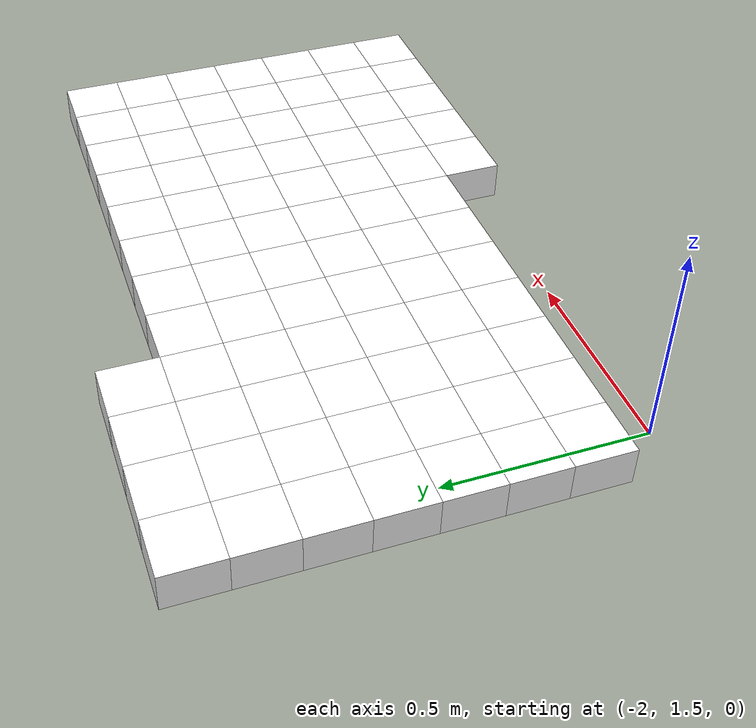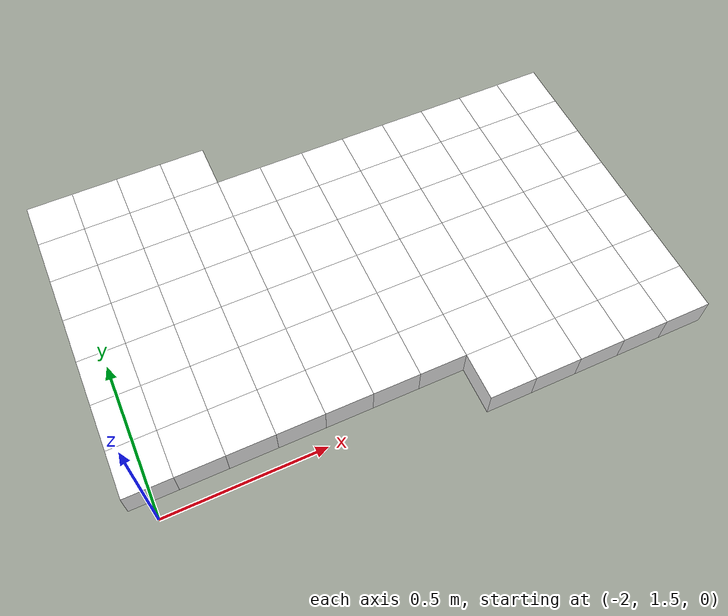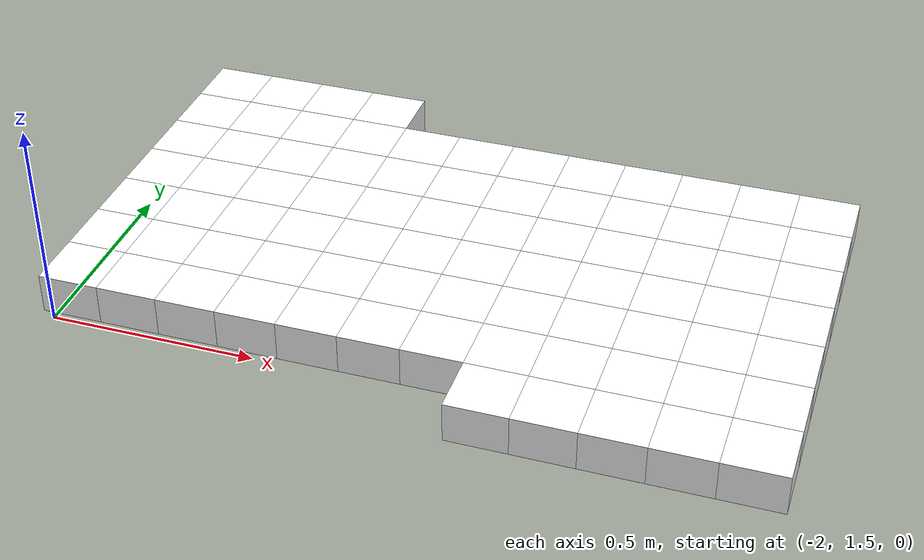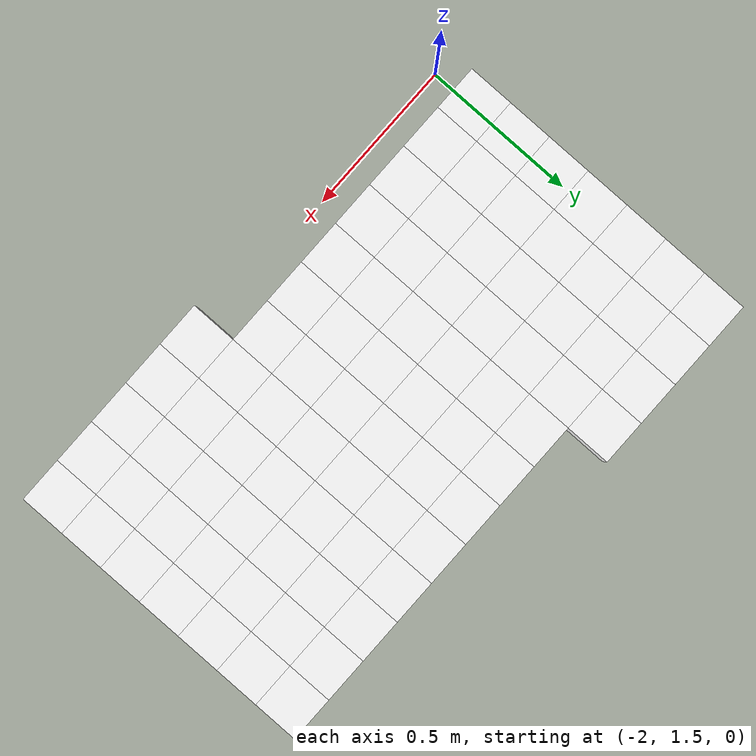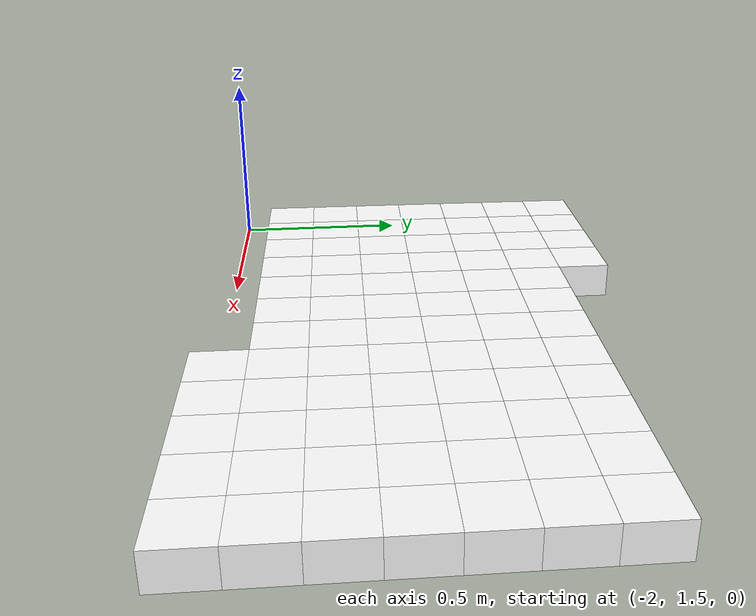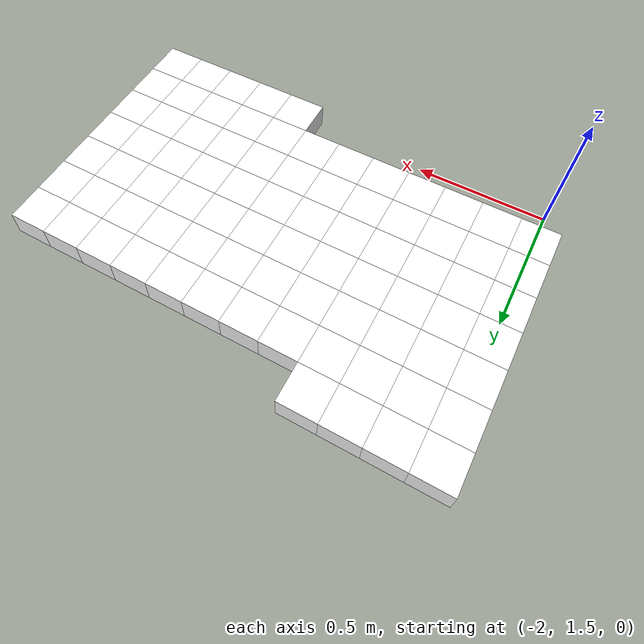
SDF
<sdf version="1.7">
 <world name="default">
  <include><uri>model://sun</uri></include>
  <model name="static_environment">
   <static>true</static>
   <link name="region_127">
    <pose>-0.95 1.5 0.0 0.0 0.0 0.0</pose>
    <collision name="region_127_collision">
     <geometry><box><size>0.15 0.15 0.1</size></box></geometry>
     <surface><friction><ode><mu>1.0</mu><mu2>1.0</mu2></ode></friction></surface>
    </collision>
    <visual name="region_127_visual">
     <geometry><box><size>0.15 0.15 0.1</size></box></geometry>
     <material><ambient>1.0 1.0 1.0 1.0</ambient><diffuse>1.0 1.0 1.0 1.0</diffuse></material>
    </visual>
   </link>
   <link name="region_128">
    <pose>-0.8 1.5 0.0 0.0 0.0 0.0</pose>
    <collision name="region_128_collision">
     <geometry><box><size>0.15 0.15 0.1</size></box></geometry>
     <surface><friction><ode><mu>1.0</mu><mu2>1.0</mu2></ode></friction></surface>
    </collision>
    <visual name="region_128_visual">
     <geometry><box><size>0.15 0.15 0.1</size></box></geometry>
     <material><ambient>1.0 1.0 1.0 1.0</ambient><diffuse>1.0 1.0 1.0 1.0</diffuse></material>
    </visual>
   </link>
   <link name="region_129">
    <pose>-0.6500000000000001 1.5 0.0 0.0 0.0 0.0</pose>
    <collision name="region_129_collision">
     <geometry><box><size>0.15 0.15 0.1</size></box></geometry>
     <surface><friction><ode><mu>1.0</mu><mu2>1.0</mu2></ode></friction></surface>
    </collision>
    <visual name="region_129_visual">
     <geometry><box><size>0.15 0.15 0.1</size></box></geometry>
     <material><ambient>1.0 1.0 1.0 1.0</ambient><diffuse>1.0 1.0 1.0 1.0</diffuse></material>
    </visual>
   </link>
   <link name="region_130">
    <pose>-0.5000000000000002 1.5 0.0 0.0 0.0 0.0</pose>
    <collision name="region_130_collision">
     <geometry><box><size>0.15 0.15 0.1</size></box></geometry>
     <surface><friction><ode><mu>1.0</mu><mu2>1.0</mu2></ode></friction></surface>
    </collision>
    <visual name="region_130_visual">
     <geometry><box><size>0.15 0.15 0.1</size></box></geometry>
     <material><ambient>1.0 1.0 1.0 1.0</ambient><diffuse>1.0 1.0 1.0 1.0</diffuse></material>
    </visual>
   </link>
   <link name="region_131">
    <pose>-0.3500000000000003 1.5 0.0 0.0 0.0 0.0</pose>
    <collision name="region_131_collision">
     <geometry><box><size>0.15 0.15 0.1</size></box></geometry>
     <surface><friction><ode><mu>1.0</mu><mu2>1.0</mu2></ode></friction></surface>
    </collision>
    <visual name="region_131_visual">
     <geometry><box><size>0.15 0.15 0.1</size></box></geometry>
     <material><ambient>1.0 1.0 1.0 1.0</ambient><diffuse>1.0 1.0 1.0 1.0</diffuse></material>
    </visual>
   </link>
   <link name="region_140">
    <pose>-2.0 1.65 0.0 0.0 0.0 0.0</pose>
    <collision name="region_140_collision">
     <geometry><box><size>0.15 0.15 0.1</size></box></geometry>
     <surface><friction><ode><mu>1.0</mu><mu2>1.0</mu2></ode></friction></surface>
    </collision>
    <visual name="region_140_visual">
     <geometry><box><size>0.15 0.15 0.1</size></box></geometry>
     <material><ambient>1.0 1.0 1.0 1.0</ambient><diffuse>1.0 1.0 1.0 1.0</diffuse></material>
    </visual>
   </link>
   <link name="region_141">
    <pose>-1.85 1.65 0.0 0.0 0.0 0.0</pose>
    <collision name="region_141_collision">
     <geometry><box><size>0.15 0.15 0.1</size></box></geometry>
     <surface><friction><ode><mu>1.0</mu><mu2>1.0</mu2></ode></friction></surface>
    </collision>
    <visual name="region_141_visual">
     <geometry><box><size>0.15 0.15 0.1</size></box></geometry>
     <material><ambient>1.0 1.0 1.0 1.0</ambient><diffuse>1.0 1.0 1.0 1.0</diffuse></material>
    </visual>
   </link>
   <link name="region_142">
    <pose>-1.7 1.65 0.0 0.0 0.0 0.0</pose>
    <collision name="region_142_collision">
     <geometry><box><size>0.15 0.15 0.1</size></box></geometry>
     <surface><friction><ode><mu>1.0</mu><mu2>1.0</mu2></ode></friction></surface>
    </collision>
    <visual name="region_142_visual">
     <geometry><box><size>0.15 0.15 0.1</size></box></geometry>
     <material><ambient>1.0 1.0 1.0 1.0</ambient><diffuse>1.0 1.0 1.0 1.0</diffuse></material>
    </visual>
   </link>
   <link name="region_143">
    <pose>-1.55 1.65 0.0 0.0 0.0 0.0</pose>
    <collision name="region_143_collision">
     <geometry><box><size>0.15 0.15 0.1</size></box></geometry>
     <surface><friction><ode><mu>1.0</mu><mu2>1.0</mu2></ode></friction></surface>
    </collision>
    <visual name="region_143_visual">
     <geometry><box><size>0.15 0.15 0.1</size></box></geometry>
     <material><ambient>1.0 1.0 1.0 1.0</ambient><diffuse>1.0 1.0 1.0 1.0</diffuse></material>
    </visual>
   </link>
   <link name="region_144">
    <pose>-1.4 1.65 0.0 0.0 0.0 0.0</pose>
    <collision name="region_144_collision">
     <geometry><box><size>0.15 0.15 0.1</size></box></geometry>
     <surface><friction><ode><mu>1.0</mu><mu2>1.0</mu2></ode></friction></surface>
    </collision>
    <visual name="region_144_visual">
     <geometry><box><size>0.15 0.15 0.1</size></box></geometry>
     <material><ambient>1.0 1.0 1.0 1.0</ambient><diffuse>1.0 1.0 1.0 1.0</diffuse></material>
    </visual>
   </link>
   <link name="region_145">
    <pose>-1.25 1.65 0.0 0.0 0.0 0.0</pose>
    <collision name="region_145_collision">
     <geometry><box><size>0.15 0.15 0.1</size></box></geometry>
     <surface><friction><ode><mu>1.0</mu><mu2>1.0</mu2></ode></friction></surface>
    </collision>
    <visual name="region_145_visual">
     <geometry><box><size>0.15 0.15 0.1</size></box></geometry>
     <material><ambient>1.0 1.0 1.0 1.0</ambient><diffuse>1.0 1.0 1.0 1.0</diffuse></material>
    </visual>
   </link>
   <link name="region_146">
    <pose>-1.1 1.65 0.0 0.0 0.0 0.0</pose>
    <collision name="region_146_collision">
     <geometry><box><size>0.15 0.15 0.1</size></box></geometry>
     <surface><friction><ode><mu>1.0</mu><mu2>1.0</mu2></ode></friction></surface>
    </collision>
    <visual name="region_146_visual">
     <geometry><box><size>0.15 0.15 0.1</size></box></geometry>
     <material><ambient>1.0 1.0 1.0 1.0</ambient><diffuse>1.0 1.0 1.0 1.0</diffuse></material>
    </visual>
   </link>
   <link name="region_147">
    <pose>-0.95 1.65 0.0 0.0 0.0 0.0</pose>
    <collision name="region_147_collision">
     <geometry><box><size>0.15 0.15 0.1</size></box></geometry>
     <surface><friction><ode><mu>1.0</mu><mu2>1.0</mu2></ode></friction></surface>
    </collision>
    <visual name="region_147_visual">
     <geometry><box><size>0.15 0.15 0.1</size></box></geometry>
     <material><ambient>1.0 1.0 1.0 1.0</ambient><diffuse>1.0 1.0 1.0 1.0</diffuse></material>
    </visual>
   </link>
   <link name="region_148">
    <pose>-0.8 1.65 0.0 0.0 0.0 0.0</pose>
    <collision name="region_148_collision">
     <geometry><box><size>0.15 0.15 0.1</size></box></geometry>
     <surface><friction><ode><mu>1.0</mu><mu2>1.0</mu2></ode></friction></surface>
    </collision>
    <visual name="region_148_visual">
     <geometry><box><size>0.15 0.15 0.1</size></box></geometry>
     <material><ambient>1.0 1.0 1.0 1.0</ambient><diffuse>1.0 1.0 1.0 1.0</diffuse></material>
    </visual>
   </link>
   <link name="region_149">
    <pose>-0.6500000000000001 1.65 0.0 0.0 0.0 0.0</pose>
    <collision name="region_149_collision">
     <geometry><box><size>0.15 0.15 0.1</size></box></geometry>
     <surface><friction><ode><mu>1.0</mu><mu2>1.0</mu2></ode></friction></surface>
    </collision>
    <visual name="region_149_visual">
     <geometry><box><size>0.15 0.15 0.1</size></box></geometry>
     <material><ambient>1.0 1.0 1.0 1.0</ambient><diffuse>1.0 1.0 1.0 1.0</diffuse></material>
    </visual>
   </link>
   <link name="region_150">
    <pose>-0.5000000000000002 1.65 0.0 0.0 0.0 0.0</pose>
    <collision name="region_150_collision">
     <geometry><box><size>0.15 0.15 0.1</size></box></geometry>
     <surface><friction><ode><mu>1.0</mu><mu2>1.0</mu2></ode></friction></surface>
    </collision>
    <visual name="region_150_visual">
     <geometry><box><size>0.15 0.15 0.1</size></box></geometry>
     <material><ambient>1.0 1.0 1.0 1.0</ambient><diffuse>1.0 1.0 1.0 1.0</diffuse></material>
    </visual>
   </link>
   <link name="region_151">
    <pose>-0.3500000000000003 1.65 0.0 0.0 0.0 0.0</pose>
    <collision name="region_151_collision">
     <geometry><box><size>0.15 0.15 0.1</size></box></geometry>
     <surface><friction><ode><mu>1.0</mu><mu2>1.0</mu2></ode></friction></surface>
    </collision>
    <visual name="region_151_visual">
     <geometry><box><size>0.15 0.15 0.1</size></box></geometry>
     <material><ambient>1.0 1.0 1.0 1.0</ambient><diffuse>1.0 1.0 1.0 1.0</diffuse></material>
    </visual>
   </link>
   <link name="region_160">
    <pose>-2.0 1.7999999999999998 0.0 0.0 0.0 0.0</pose>
    <collision name="region_160_collision">
     <geometry><box><size>0.15 0.15 0.1</size></box></geometry>
     <surface><friction><ode><mu>1.0</mu><mu2>1.0</mu2></ode></friction></surface>
    </collision>
    <visual name="region_160_visual">
     <geometry><box><size>0.15 0.15 0.1</size></box></geometry>
     <material><ambient>1.0 1.0 1.0 1.0</ambient><diffuse>1.0 1.0 1.0 1.0</diffuse></material>
    </visual>
   </link>
   <link name="region_161">
    <pose>-1.85 1.7999999999999998 0.0 0.0 0.0 0.0</pose>
    <collision name="region_161_collision">
     <geometry><box><size>0.15 0.15 0.1</size></box></geometry>
     <surface><friction><ode><mu>1.0</mu><mu2>1.0</mu2></ode></friction></surface>
    </collision>
    <visual name="region_161_visual">
     <geometry><box><size>0.15 0.15 0.1</size></box></geometry>
     <material><ambient>1.0 1.0 1.0 1.0</ambient><diffuse>1.0 1.0 1.0 1.0</diffuse></material>
    </visual>
   </link>
   <link name="region_162">
    <pose>-1.7 1.7999999999999998 0.0 0.0 0.0 0.0</pose>
    <collision name="region_162_collision">
     <geometry><box><size>0.15 0.15 0.1</size></box></geometry>
     <surface><friction><ode><mu>1.0</mu><mu2>1.0</mu2></ode></friction></surface>
    </collision>
    <visual name="region_162_visual">
     <geometry><box><size>0.15 0.15 0.1</size></box></geometry>
     <material><ambient>1.0 1.0 1.0 1.0</ambient><diffuse>1.0 1.0 1.0 1.0</diffuse></material>
    </visual>
   </link>
   <link name="region_163">
    <pose>-1.55 1.7999999999999998 0.0 0.0 0.0 0.0</pose>
    <collision name="region_163_collision">
     <geometry><box><size>0.15 0.15 0.1</size></box></geometry>
     <surface><friction><ode><mu>1.0</mu><mu2>1.0</mu2></ode></friction></surface>
    </collision>
    <visual name="region_163_visual">
     <geometry><box><size>0.15 0.15 0.1</size></box></geometry>
     <material><ambient>1.0 1.0 1.0 1.0</ambient><diffuse>1.0 1.0 1.0 1.0</diffuse></material>
    </visual>
   </link>
   <link name="region_164">
    <pose>-1.4 1.7999999999999998 0.0 0.0 0.0 0.0</pose>
    <collision name="region_164_collision">
     <geometry><box><size>0.15 0.15 0.1</size></box></geometry>
     <surface><friction><ode><mu>1.0</mu><mu2>1.0</mu2></ode></friction></surface>
    </collision>
    <visual name="region_164_visual">
     <geometry><box><size>0.15 0.15 0.1</size></box></geometry>
     <material><ambient>1.0 1.0 1.0 1.0</ambient><diffuse>1.0 1.0 1.0 1.0</diffuse></material>
    </visual>
   </link>
   <link name="region_165">
    <pose>-1.25 1.7999999999999998 0.0 0.0 0.0 0.0</pose>
    <collision name="region_165_collision">
     <geometry><box><size>0.15 0.15 0.1</size></box></geometry>
     <surface><friction><ode><mu>1.0</mu><mu2>1.0</mu2></ode></friction></surface>
    </collision>
    <visual name="region_165_visual">
     <geometry><box><size>0.15 0.15 0.1</size></box></geometry>
     <material><ambient>1.0 1.0 1.0 1.0</ambient><diffuse>1.0 1.0 1.0 1.0</diffuse></material>
    </visual>
   </link>
   <link name="region_166">
    <pose>-1.1 1.7999999999999998 0.0 0.0 0.0 0.0</pose>
    <collision name="region_166_collision">
     <geometry><box><size>0.15 0.15 0.1</size></box></geometry>
     <surface><friction><ode><mu>1.0</mu><mu2>1.0</mu2></ode></friction></surface>
    </collision>
    <visual name="region_166_visual">
     <geometry><box><size>0.15 0.15 0.1</size></box></geometry>
     <material><ambient>1.0 1.0 1.0 1.0</ambient><diffuse>1.0 1.0 1.0 1.0</diffuse></material>
    </visual>
   </link>
   <link name="region_167">
    <pose>-0.95 1.7999999999999998 0.0 0.0 0.0 0.0</pose>
    <collision name="region_167_collision">
     <geometry><box><size>0.15 0.15 0.1</size></box></geometry>
     <surface><friction><ode><mu>1.0</mu><mu2>1.0</mu2></ode></friction></surface>
    </collision>
    <visual name="region_167_visual">
     <geometry><box><size>0.15 0.15 0.1</size></box></geometry>
     <material><ambient>1.0 1.0 1.0 1.0</ambient><diffuse>1.0 1.0 1.0 1.0</diffuse></material>
    </visual>
   </link>
   <link name="region_168">
    <pose>-0.8 1.7999999999999998 0.0 0.0 0.0 0.0</pose>
    <collision name="region_168_collision">
     <geometry><box><size>0.15 0.15 0.1</size></box></geometry>
     <surface><friction><ode><mu>1.0</mu><mu2>1.0</mu2></ode></friction></surface>
    </collision>
    <visual name="region_168_visual">
     <geometry><box><size>0.15 0.15 0.1</size></box></geometry>
     <material><ambient>1.0 1.0 1.0 1.0</ambient><diffuse>1.0 1.0 1.0 1.0</diffuse></material>
    </visual>
   </link>
   <link name="region_169">
    <pose>-0.6500000000000001 1.7999999999999998 0.0 0.0 0.0 0.0</pose>
    <collision name="region_169_collision">
     <geometry><box><size>0.15 0.15 0.1</size></box></geometry>
     <surface><friction><ode><mu>1.0</mu><mu2>1.0</mu2></ode></friction></surface>
    </collision>
    <visual name="region_169_visual">
     <geometry><box><size>0.15 0.15 0.1</size></box></geometry>
     <material><ambient>1.0 1.0 1.0 1.0</ambient><diffuse>1.0 1.0 1.0 1.0</diffuse></material>
    </visual>
   </link>
   <link name="region_170">
    <pose>-0.5000000000000002 1.7999999999999998 0.0 0.0 0.0 0.0</pose>
    <collision name="region_170_collision">
     <geometry><box><size>0.15 0.15 0.1</size></box></geometry>
     <surface><friction><ode><mu>1.0</mu><mu2>1.0</mu2></ode></friction></surface>
    </collision>
    <visual name="region_170_visual">
     <geometry><box><size>0.15 0.15 0.1</size></box></geometry>
     <material><ambient>1.0 1.0 1.0 1.0</ambient><diffuse>1.0 1.0 1.0 1.0</diffuse></material>
    </visual>
   </link>
   <link name="region_171">
    <pose>-0.3500000000000003 1.7999999999999998 0.0 0.0 0.0 0.0</pose>
    <collision name="region_171_collision">
     <geometry><box><size>0.15 0.15 0.1</size></box></geometry>
     <surface><friction><ode><mu>1.0</mu><mu2>1.0</mu2></ode></friction></surface>
    </collision>
    <visual name="region_171_visual">
     <geometry><box><size>0.15 0.15 0.1</size></box></geometry>
     <material><ambient>1.0 1.0 1.0 1.0</ambient><diffuse>1.0 1.0 1.0 1.0</diffuse></material>
    </visual>
   </link>
   <link name="region_180">
    <pose>-2.0 1.9499999999999997 0.0 0.0 0.0 0.0</pose>
    <collision name="region_180_collision">
     <geometry><box><size>0.15 0.15 0.1</size></box></geometry>
     <surface><friction><ode><mu>1.0</mu><mu2>1.0</mu2></ode></friction></surface>
    </collision>
    <visual name="region_180_visual">
     <geometry><box><size>0.15 0.15 0.1</size></box></geometry>
     <material><ambient>1.0 1.0 1.0 1.0</ambient><diffuse>1.0 1.0 1.0 1.0</diffuse></material>
    </visual>
   </link>
   <link name="region_181">
    <pose>-1.85 1.9499999999999997 0.0 0.0 0.0 0.0</pose>
    <collision name="region_181_collision">
     <geometry><box><size>0.15 0.15 0.1</size></box></geometry>
     <surface><friction><ode><mu>1.0</mu><mu2>1.0</mu2></ode></friction></surface>
    </collision>
    <visual name="region_181_visual">
     <geometry><box><size>0.15 0.15 0.1</size></box></geometry>
     <material><ambient>1.0 1.0 1.0 1.0</ambient><diffuse>1.0 1.0 1.0 1.0</diffuse></material>
    </visual>
   </link>
   <link name="region_182">
    <pose>-1.7 1.9499999999999997 0.0 0.0 0.0 0.0</pose>
    <collision name="region_182_collision">
     <geometry><box><size>0.15 0.15 0.1</size></box></geometry>
     <surface><friction><ode><mu>1.0</mu><mu2>1.0</mu2></ode></friction></surface>
    </collision>
    <visual name="region_182_visual">
     <geometry><box><size>0.15 0.15 0.1</size></box></geometry>
     <material><ambient>1.0 1.0 1.0 1.0</ambient><diffuse>1.0 1.0 1.0 1.0</diffuse></material>
    </visual>
   </link>
   <link name="region_183">
    <pose>-1.55 1.9499999999999997 0.0 0.0 0.0 0.0</pose>
    <collision name="region_183_collision">
     <geometry><box><size>0.15 0.15 0.1</size></box></geometry>
     <surface><friction><ode><mu>1.0</mu><mu2>1.0</mu2></ode></friction></surface>
    </collision>
    <visual name="region_183_visual">
     <geometry><box><size>0.15 0.15 0.1</size></box></geometry>
     <material><ambient>1.0 1.0 1.0 1.0</ambient><diffuse>1.0 1.0 1.0 1.0</diffuse></material>
    </visual>
   </link>
   <link name="region_184">
    <pose>-1.4 1.9499999999999997 0.0 0.0 0.0 0.0</pose>
    <collision name="region_184_collision">
     <geometry><box><size>0.15 0.15 0.1</size></box></geometry>
     <surface><friction><ode><mu>1.0</mu><mu2>1.0</mu2></ode></friction></surface>
    </collision>
    <visual name="region_184_visual">
     <geometry><box><size>0.15 0.15 0.1</size></box></geometry>
     <material><ambient>1.0 1.0 1.0 1.0</ambient><diffuse>1.0 1.0 1.0 1.0</diffuse></material>
    </visual>
   </link>
   <link name="region_185">
    <pose>-1.25 1.9499999999999997 0.0 0.0 0.0 0.0</pose>
    <collision name="region_185_collision">
     <geometry><box><size>0.15 0.15 0.1</size></box></geometry>
     <surface><friction><ode><mu>1.0</mu><mu2>1.0</mu2></ode></friction></surface>
    </collision>
    <visual name="region_185_visual">
     <geometry><box><size>0.15 0.15 0.1</size></box></geometry>
     <material><ambient>1.0 1.0 1.0 1.0</ambient><diffuse>1.0 1.0 1.0 1.0</diffuse></material>
    </visual>
   </link>
   <link name="region_186">
    <pose>-1.1 1.9499999999999997 0.0 0.0 0.0 0.0</pose>
    <collision name="region_186_collision">
     <geometry><box><size>0.15 0.15 0.1</size></box></geometry>
     <surface><friction><ode><mu>1.0</mu><mu2>1.0</mu2></ode></friction></surface>
    </collision>
    <visual name="region_186_visual">
     <geometry><box><size>0.15 0.15 0.1</size></box></geometry>
     <material><ambient>1.0 1.0 1.0 1.0</ambient><diffuse>1.0 1.0 1.0 1.0</diffuse></material>
    </visual>
   </link>
   <link name="region_187">
    <pose>-0.95 1.9499999999999997 0.0 0.0 0.0 0.0</pose>
    <collision name="region_187_collision">
     <geometry><box><size>0.15 0.15 0.1</size></box></geometry>
     <surface><friction><ode><mu>1.0</mu><mu2>1.0</mu2></ode></friction></surface>
    </collision>
    <visual name="region_187_visual">
     <geometry><box><size>0.15 0.15 0.1</size></box></geometry>
     <material><ambient>1.0 1.0 1.0 1.0</ambient><diffuse>1.0 1.0 1.0 1.0</diffuse></material>
    </visual>
   </link>
   <link name="region_188">
    <pose>-0.8 1.9499999999999997 0.0 0.0 0.0 0.0</pose>
    <collision name="region_188_collision">
     <geometry><box><size>0.15 0.15 0.1</size></box></geometry>
     <surface><friction><ode><mu>1.0</mu><mu2>1.0</mu2></ode></friction></surface>
    </collision>
    <visual name="region_188_visual">
     <geometry><box><size>0.15 0.15 0.1</size></box></geometry>
     <material><ambient>1.0 1.0 1.0 1.0</ambient><diffuse>1.0 1.0 1.0 1.0</diffuse></material>
    </visual>
   </link>
   <link name="region_189">
    <pose>-0.6500000000000001 1.9499999999999997 0.0 0.0 0.0 0.0</pose>
    <collision name="region_189_collision">
     <geometry><box><size>0.15 0.15 0.1</size></box></geometry>
     <surface><friction><ode><mu>1.0</mu><mu2>1.0</mu2></ode></friction></surface>
    </collision>
    <visual name="region_189_visual">
     <geometry><box><size>0.15 0.15 0.1</size></box></geometry>
     <material><ambient>1.0 1.0 1.0 1.0</ambient><diffuse>1.0 1.0 1.0 1.0</diffuse></material>
    </visual>
   </link>
   <link name="region_190">
    <pose>-0.5000000000000002 1.9499999999999997 0.0 0.0 0.0 0.0</pose>
    <collision name="region_190_collision">
     <geometry><box><size>0.15 0.15 0.1</size></box></geometry>
     <surface><friction><ode><mu>1.0</mu><mu2>1.0</mu2></ode></friction></surface>
    </collision>
    <visual name="region_190_visual">
     <geometry><box><size>0.15 0.15 0.1</size></box></geometry>
     <material><ambient>1.0 1.0 1.0 1.0</ambient><diffuse>1.0 1.0 1.0 1.0</diffuse></material>
    </visual>
   </link>
   <link name="region_191">
    <pose>-0.3500000000000003 1.9499999999999997 0.0 0.0 0.0 0.0</pose>
    <collision name="region_191_collision">
     <geometry><box><size>0.15 0.15 0.1</size></box></geometry>
     <surface><friction><ode><mu>1.0</mu><mu2>1.0</mu2></ode></friction></surface>
    </collision>
    <visual name="region_191_visual">
     <geometry><box><size>0.15 0.15 0.1</size></box></geometry>
     <material><ambient>1.0 1.0 1.0 1.0</ambient><diffuse>1.0 1.0 1.0 1.0</diffuse></material>
    </visual>
   </link>
   <link name="region_200">
    <pose>-2.0 2.0999999999999996 0.0 0.0 0.0 0.0</pose>
    <collision name="region_200_collision">
     <geometry><box><size>0.15 0.15 0.1</size></box></geometry>
     <surface><friction><ode><mu>1.0</mu><mu2>1.0</mu2></ode></friction></surface>
    </collision>
    <visual name="region_200_visual">
     <geometry><box><size>0.15 0.15 0.1</size></box></geometry>
     <material><ambient>1.0 1.0 1.0 1.0</ambient><diffuse>1.0 1.0 1.0 1.0</diffuse></material>
    </visual>
   </link>
   <link name="region_201">
    <pose>-1.85 2.0999999999999996 0.0 0.0 0.0 0.0</pose>
    <collision name="region_201_collision">
     <geometry><box><size>0.15 0.15 0.1</size></box></geometry>
     <surface><friction><ode><mu>1.0</mu><mu2>1.0</mu2></ode></friction></surface>
    </collision>
    <visual name="region_201_visual">
     <geometry><box><size>0.15 0.15 0.1</size></box></geometry>
     <material><ambient>1.0 1.0 1.0 1.0</ambient><diffuse>1.0 1.0 1.0 1.0</diffuse></material>
    </visual>
   </link>
   <link name="region_202">
    <pose>-1.7 2.0999999999999996 0.0 0.0 0.0 0.0</pose>
    <collision name="region_202_collision">
     <geometry><box><size>0.15 0.15 0.1</size></box></geometry>
     <surface><friction><ode><mu>1.0</mu><mu2>1.0</mu2></ode></friction></surface>
    </collision>
    <visual name="region_202_visual">
     <geometry><box><size>0.15 0.15 0.1</size></box></geometry>
     <material><ambient>1.0 1.0 1.0 1.0</ambient><diffuse>1.0 1.0 1.0 1.0</diffuse></material>
    </visual>
   </link>
   <link name="region_203">
    <pose>-1.55 2.0999999999999996 0.0 0.0 0.0 0.0</pose>
    <collision name="region_203_collision">
     <geometry><box><size>0.15 0.15 0.1</size></box></geometry>
     <surface><friction><ode><mu>1.0</mu><mu2>1.0</mu2></ode></friction></surface>
    </collision>
    <visual name="region_203_visual">
     <geometry><box><size>0.15 0.15 0.1</size></box></geometry>
     <material><ambient>1.0 1.0 1.0 1.0</ambient><diffuse>1.0 1.0 1.0 1.0</diffuse></material>
    </visual>
   </link>
   <link name="region_204">
    <pose>-1.4 2.0999999999999996 0.0 0.0 0.0 0.0</pose>
    <collision name="region_204_collision">
     <geometry><box><size>0.15 0.15 0.1</size></box></geometry>
     <surface><friction><ode><mu>1.0</mu><mu2>1.0</mu2></ode></friction></surface>
    </collision>
    <visual name="region_204_visual">
     <geometry><box><size>0.15 0.15 0.1</size></box></geometry>
     <material><ambient>1.0 1.0 1.0 1.0</ambient><diffuse>1.0 1.0 1.0 1.0</diffuse></material>
    </visual>
   </link>
   <link name="region_205">
    <pose>-1.25 2.0999999999999996 0.0 0.0 0.0 0.0</pose>
    <collision name="region_205_collision">
     <geometry><box><size>0.15 0.15 0.1</size></box></geometry>
     <surface><friction><ode><mu>1.0</mu><mu2>1.0</mu2></ode></friction></surface>
    </collision>
    <visual name="region_205_visual">
     <geometry><box><size>0.15 0.15 0.1</size></box></geometry>
     <material><ambient>1.0 1.0 1.0 1.0</ambient><diffuse>1.0 1.0 1.0 1.0</diffuse></material>
    </visual>
   </link>
   <link name="region_206">
    <pose>-1.1 2.0999999999999996 0.0 0.0 0.0 0.0</pose>
    <collision name="region_206_collision">
     <geometry><box><size>0.15 0.15 0.1</size></box></geometry>
     <surface><friction><ode><mu>1.0</mu><mu2>1.0</mu2></ode></friction></surface>
    </collision>
    <visual name="region_206_visual">
     <geometry><box><size>0.15 0.15 0.1</size></box></geometry>
     <material><ambient>1.0 1.0 1.0 1.0</ambient><diffuse>1.0 1.0 1.0 1.0</diffuse></material>
    </visual>
   </link>
   <link name="region_207">
    <pose>-0.95 2.0999999999999996 0.0 0.0 0.0 0.0</pose>
    <collision name="region_207_collision">
     <geometry><box><size>0.15 0.15 0.1</size></box></geometry>
     <surface><friction><ode><mu>1.0</mu><mu2>1.0</mu2></ode></friction></surface>
    </collision>
    <visual name="region_207_visual">
     <geometry><box><size>0.15 0.15 0.1</size></box></geometry>
     <material><ambient>1.0 1.0 1.0 1.0</ambient><diffuse>1.0 1.0 1.0 1.0</diffuse></material>
    </visual>
   </link>
   <link name="region_208">
    <pose>-0.8 2.0999999999999996 0.0 0.0 0.0 0.0</pose>
    <collision name="region_208_collision">
     <geometry><box><size>0.15 0.15 0.1</size></box></geometry>
     <surface><friction><ode><mu>1.0</mu><mu2>1.0</mu2></ode></friction></surface>
    </collision>
    <visual name="region_208_visual">
     <geometry><box><size>0.15 0.15 0.1</size></box></geometry>
     <material><ambient>1.0 1.0 1.0 1.0</ambient><diffuse>1.0 1.0 1.0 1.0</diffuse></material>
    </visual>
   </link>
   <link name="region_209">
    <pose>-0.6500000000000001 2.0999999999999996 0.0 0.0 0.0 0.0</pose>
    <collision name="region_209_collision">
     <geometry><box><size>0.15 0.15 0.1</size></box></geometry>
     <surface><friction><ode><mu>1.0</mu><mu2>1.0</mu2></ode></friction></surface>
    </collision>
    <visual name="region_209_visual">
     <geometry><box><size>0.15 0.15 0.1</size></box></geometry>
     <material><ambient>1.0 1.0 1.0 1.0</ambient><diffuse>1.0 1.0 1.0 1.0</diffuse></material>
    </visual>
   </link>
   <link name="region_210">
    <pose>-0.5000000000000002 2.0999999999999996 0.0 0.0 0.0 0.0</pose>
    <collision name="region_210_collision">
     <geometry><box><size>0.15 0.15 0.1</size></box></geometry>
     <surface><friction><ode><mu>1.0</mu><mu2>1.0</mu2></ode></friction></surface>
    </collision>
    <visual name="region_210_visual">
     <geometry><box><size>0.15 0.15 0.1</size></box></geometry>
     <material><ambient>1.0 1.0 1.0 1.0</ambient><diffuse>1.0 1.0 1.0 1.0</diffuse></material>
    </visual>
   </link>
   <link name="region_211">
    <pose>-0.3500000000000003 2.0999999999999996 0.0 0.0 0.0 0.0</pose>
    <collision name="region_211_collision">
     <geometry><box><size>0.15 0.15 0.1</size></box></geometry>
     <surface><friction><ode><mu>1.0</mu><mu2>1.0</mu2></ode></friction></surface>
    </collision>
    <visual name="region_211_visual">
     <geometry><box><size>0.15 0.15 0.1</size></box></geometry>
     <material><ambient>1.0 1.0 1.0 1.0</ambient><diffuse>1.0 1.0 1.0 1.0</diffuse></material>
    </visual>
   </link>
   <link name="region_220">
    <pose>-2.0 2.2499999999999996 0.0 0.0 0.0 0.0</pose>
    <collision name="region_220_collision">
     <geometry><box><size>0.15 0.15 0.1</size></box></geometry>
     <surface><friction><ode><mu>1.0</mu><mu2>1.0</mu2></ode></friction></surface>
    </collision>
    <visual name="region_220_visual">
     <geometry><box><size>0.15 0.15 0.1</size></box></geometry>
     <material><ambient>1.0 1.0 1.0 1.0</ambient><diffuse>1.0 1.0 1.0 1.0</diffuse></material>
    </visual>
   </link>
   <link name="region_221">
    <pose>-1.85 2.2499999999999996 0.0 0.0 0.0 0.0</pose>
    <collision name="region_221_collision">
     <geometry><box><size>0.15 0.15 0.1</size></box></geometry>
     <surface><friction><ode><mu>1.0</mu><mu2>1.0</mu2></ode></friction></surface>
    </collision>
    <visual name="region_221_visual">
     <geometry><box><size>0.15 0.15 0.1</size></box></geometry>
     <material><ambient>1.0 1.0 1.0 1.0</ambient><diffuse>1.0 1.0 1.0 1.0</diffuse></material>
    </visual>
   </link>
   <link name="region_222">
    <pose>-1.7 2.2499999999999996 0.0 0.0 0.0 0.0</pose>
    <collision name="region_222_collision">
     <geometry><box><size>0.15 0.15 0.1</size></box></geometry>
     <surface><friction><ode><mu>1.0</mu><mu2>1.0</mu2></ode></friction></surface>
    </collision>
    <visual name="region_222_visual">
     <geometry><box><size>0.15 0.15 0.1</size></box></geometry>
     <material><ambient>1.0 1.0 1.0 1.0</ambient><diffuse>1.0 1.0 1.0 1.0</diffuse></material>
    </visual>
   </link>
   <link name="region_223">
    <pose>-1.55 2.2499999999999996 0.0 0.0 0.0 0.0</pose>
    <collision name="region_223_collision">
     <geometry><box><size>0.15 0.15 0.1</size></box></geometry>
     <surface><friction><ode><mu>1.0</mu><mu2>1.0</mu2></ode></friction></surface>
    </collision>
    <visual name="region_223_visual">
     <geometry><box><size>0.15 0.15 0.1</size></box></geometry>
     <material><ambient>1.0 1.0 1.0 1.0</ambient><diffuse>1.0 1.0 1.0 1.0</diffuse></material>
    </visual>
   </link>
   <link name="region_224">
    <pose>-1.4 2.2499999999999996 0.0 0.0 0.0 0.0</pose>
    <collision name="region_224_collision">
     <geometry><box><size>0.15 0.15 0.1</size></box></geometry>
     <surface><friction><ode><mu>1.0</mu><mu2>1.0</mu2></ode></friction></surface>
    </collision>
    <visual name="region_224_visual">
     <geometry><box><size>0.15 0.15 0.1</size></box></geometry>
     <material><ambient>1.0 1.0 1.0 1.0</ambient><diffuse>1.0 1.0 1.0 1.0</diffuse></material>
    </visual>
   </link>
   <link name="region_225">
    <pose>-1.25 2.2499999999999996 0.0 0.0 0.0 0.0</pose>
    <collision name="region_225_collision">
     <geometry><box><size>0.15 0.15 0.1</size></box></geometry>
     <surface><friction><ode><mu>1.0</mu><mu2>1.0</mu2></ode></friction></surface>
    </collision>
    <visual name="region_225_visual">
     <geometry><box><size>0.15 0.15 0.1</size></box></geometry>
     <material><ambient>1.0 1.0 1.0 1.0</ambient><diffuse>1.0 1.0 1.0 1.0</diffuse></material>
    </visual>
   </link>
   <link name="region_226">
    <pose>-1.1 2.2499999999999996 0.0 0.0 0.0 0.0</pose>
    <collision name="region_226_collision">
     <geometry><box><size>0.15 0.15 0.1</size></box></geometry>
     <surface><friction><ode><mu>1.0</mu><mu2>1.0</mu2></ode></friction></surface>
    </collision>
    <visual name="region_226_visual">
     <geometry><box><size>0.15 0.15 0.1</size></box></geometry>
     <material><ambient>1.0 1.0 1.0 1.0</ambient><diffuse>1.0 1.0 1.0 1.0</diffuse></material>
    </visual>
   </link>
   <link name="region_227">
    <pose>-0.95 2.2499999999999996 0.0 0.0 0.0 0.0</pose>
    <collision name="region_227_collision">
     <geometry><box><size>0.15 0.15 0.1</size></box></geometry>
     <surface><friction><ode><mu>1.0</mu><mu2>1.0</mu2></ode></friction></surface>
    </collision>
    <visual name="region_227_visual">
     <geometry><box><size>0.15 0.15 0.1</size></box></geometry>
     <material><ambient>1.0 1.0 1.0 1.0</ambient><diffuse>1.0 1.0 1.0 1.0</diffuse></material>
    </visual>
   </link>
   <link name="region_228">
    <pose>-0.8 2.2499999999999996 0.0 0.0 0.0 0.0</pose>
    <collision name="region_228_collision">
     <geometry><box><size>0.15 0.15 0.1</size></box></geometry>
     <surface><friction><ode><mu>1.0</mu><mu2>1.0</mu2></ode></friction></surface>
    </collision>
    <visual name="region_228_visual">
     <geometry><box><size>0.15 0.15 0.1</size></box></geometry>
     <material><ambient>1.0 1.0 1.0 1.0</ambient><diffuse>1.0 1.0 1.0 1.0</diffuse></material>
    </visual>
   </link>
   <link name="region_229">
    <pose>-0.6500000000000001 2.2499999999999996 0.0 0.0 0.0 0.0</pose>
    <collision name="region_229_collision">
     <geometry><box><size>0.15 0.15 0.1</size></box></geometry>
     <surface><friction><ode><mu>1.0</mu><mu2>1.0</mu2></ode></friction></surface>
    </collision>
    <visual name="region_229_visual">
     <geometry><box><size>0.15 0.15 0.1</size></box></geometry>
     <material><ambient>1.0 1.0 1.0 1.0</ambient><diffuse>1.0 1.0 1.0 1.0</diffuse></material>
    </visual>
   </link>
   <link name="region_230">
    <pose>-0.5000000000000002 2.2499999999999996 0.0 0.0 0.0 0.0</pose>
    <collision name="region_230_collision">
     <geometry><box><size>0.15 0.15 0.1</size></box></geometry>
     <surface><friction><ode><mu>1.0</mu><mu2>1.0</mu2></ode></friction></surface>
    </collision>
    <visual name="region_230_visual">
     <geometry><box><size>0.15 0.15 0.1</size></box></geometry>
     <material><ambient>1.0 1.0 1.0 1.0</ambient><diffuse>1.0 1.0 1.0 1.0</diffuse></material>
    </visual>
   </link>
   <link name="region_231">
    <pose>-0.3500000000000003 2.2499999999999996 0.0 0.0 0.0 0.0</pose>
    <collision name="region_231_collision">
     <geometry><box><size>0.15 0.15 0.1</size></box></geometry>
     <surface><friction><ode><mu>1.0</mu><mu2>1.0</mu2></ode></friction></surface>
    </collision>
    <visual name="region_231_visual">
     <geometry><box><size>0.15 0.15 0.1</size></box></geometry>
     <material><ambient>1.0 1.0 1.0 1.0</ambient><diffuse>1.0 1.0 1.0 1.0</diffuse></material>
    </visual>
   </link>
   <link name="region_240">
    <pose>-2.0 2.3999999999999995 0.0 0.0 0.0 0.0</pose>
    <collision name="region_240_collision">
     <geometry><box><size>0.15 0.15 0.1</size></box></geometry>
     <surface><friction><ode><mu>1.0</mu><mu2>1.0</mu2></ode></friction></surface>
    </collision>
    <visual name="region_240_visual">
     <geometry><box><size>0.15 0.15 0.1</size></box></geometry>
     <material><ambient>1.0 1.0 1.0 1.0</ambient><diffuse>1.0 1.0 1.0 1.0</diffuse></material>
    </visual>
   </link>
   <link name="region_241">
    <pose>-1.85 2.3999999999999995 0.0 0.0 0.0 0.0</pose>
    <collision name="region_241_collision">
     <geometry><box><size>0.15 0.15 0.1</size></box></geometry>
     <surface><friction><ode><mu>1.0</mu><mu2>1.0</mu2></ode></friction></surface>
    </collision>
    <visual name="region_241_visual">
     <geometry><box><size>0.15 0.15 0.1</size></box></geometry>
     <material><ambient>1.0 1.0 1.0 1.0</ambient><diffuse>1.0 1.0 1.0 1.0</diffuse></material>
    </visual>
   </link>
   <link name="region_242">
    <pose>-1.7 2.3999999999999995 0.0 0.0 0.0 0.0</pose>
    <collision name="region_242_collision">
     <geometry><box><size>0.15 0.15 0.1</size></box></geometry>
     <surface><friction><ode><mu>1.0</mu><mu2>1.0</mu2></ode></friction></surface>
    </collision>
    <visual name="region_242_visual">
     <geometry><box><size>0.15 0.15 0.1</size></box></geometry>
     <material><ambient>1.0 1.0 1.0 1.0</ambient><diffuse>1.0 1.0 1.0 1.0</diffuse></material>
    </visual>
   </link>
   <link name="region_243">
    <pose>-1.55 2.3999999999999995 0.0 0.0 0.0 0.0</pose>
    <collision name="region_243_collision">
     <geometry><box><size>0.15 0.15 0.1</size></box></geometry>
     <surface><friction><ode><mu>1.0</mu><mu2>1.0</mu2></ode></friction></surface>
    </collision>
    <visual name="region_243_visual">
     <geometry><box><size>0.15 0.15 0.1</size></box></geometry>
     <material><ambient>1.0 1.0 1.0 1.0</ambient><diffuse>1.0 1.0 1.0 1.0</diffuse></material>
    </visual>
   </link>
   <link name="region_244">
    <pose>-1.4 2.3999999999999995 0.0 0.0 0.0 0.0</pose>
    <collision name="region_244_collision">
     <geometry><box><size>0.15 0.15 0.1</size></box></geometry>
     <surface><friction><ode><mu>1.0</mu><mu2>1.0</mu2></ode></friction></surface>
    </collision>
    <visual name="region_244_visual">
     <geometry><box><size>0.15 0.15 0.1</size></box></geometry>
     <material><ambient>1.0 1.0 1.0 1.0</ambient><diffuse>1.0 1.0 1.0 1.0</diffuse></material>
    </visual>
   </link>
   <link name="region_245">
    <pose>-1.25 2.3999999999999995 0.0 0.0 0.0 0.0</pose>
    <collision name="region_245_collision">
     <geometry><box><size>0.15 0.15 0.1</size></box></geometry>
     <surface><friction><ode><mu>1.0</mu><mu2>1.0</mu2></ode></friction></surface>
    </collision>
    <visual name="region_245_visual">
     <geometry><box><size>0.15 0.15 0.1</size></box></geometry>
     <material><ambient>1.0 1.0 1.0 1.0</ambient><diffuse>1.0 1.0 1.0 1.0</diffuse></material>
    </visual>
   </link>
   <link name="region_246">
    <pose>-1.1 2.3999999999999995 0.0 0.0 0.0 0.0</pose>
    <collision name="region_246_collision">
     <geometry><box><size>0.15 0.15 0.1</size></box></geometry>
     <surface><friction><ode><mu>1.0</mu><mu2>1.0</mu2></ode></friction></surface>
    </collision>
    <visual name="region_246_visual">
     <geometry><box><size>0.15 0.15 0.1</size></box></geometry>
     <material><ambient>1.0 1.0 1.0 1.0</ambient><diffuse>1.0 1.0 1.0 1.0</diffuse></material>
    </visual>
   </link>
   <link name="region_247">
    <pose>-0.95 2.3999999999999995 0.0 0.0 0.0 0.0</pose>
    <collision name="region_247_collision">
     <geometry><box><size>0.15 0.15 0.1</size></box></geometry>
     <surface><friction><ode><mu>1.0</mu><mu2>1.0</mu2></ode></friction></surface>
    </collision>
    <visual name="region_247_visual">
     <geometry><box><size>0.15 0.15 0.1</size></box></geometry>
     <material><ambient>1.0 1.0 1.0 1.0</ambient><diffuse>1.0 1.0 1.0 1.0</diffuse></material>
    </visual>
   </link>
   <link name="region_248">
    <pose>-0.8 2.3999999999999995 0.0 0.0 0.0 0.0</pose>
    <collision name="region_248_collision">
     <geometry><box><size>0.15 0.15 0.1</size></box></geometry>
     <surface><friction><ode><mu>1.0</mu><mu2>1.0</mu2></ode></friction></surface>
    </collision>
    <visual name="region_248_visual">
     <geometry><box><size>0.15 0.15 0.1</size></box></geometry>
     <material><ambient>1.0 1.0 1.0 1.0</ambient><diffuse>1.0 1.0 1.0 1.0</diffuse></material>
    </visual>
   </link>
   <link name="region_249">
    <pose>-0.6500000000000001 2.3999999999999995 0.0 0.0 0.0 0.0</pose>
    <collision name="region_249_collision">
     <geometry><box><size>0.15 0.15 0.1</size></box></geometry>
     <surface><friction><ode><mu>1.0</mu><mu2>1.0</mu2></ode></friction></surface>
    </collision>
    <visual name="region_249_visual">
     <geometry><box><size>0.15 0.15 0.1</size></box></geometry>
     <material><ambient>1.0 1.0 1.0 1.0</ambient><diffuse>1.0 1.0 1.0 1.0</diffuse></material>
    </visual>
   </link>
   <link name="region_250">
    <pose>-0.5000000000000002 2.3999999999999995 0.0 0.0 0.0 0.0</pose>
    <collision name="region_250_collision">
     <geometry><box><size>0.15 0.15 0.1</size></box></geometry>
     <surface><friction><ode><mu>1.0</mu><mu2>1.0</mu2></ode></friction></surface>
    </collision>
    <visual name="region_250_visual">
     <geometry><box><size>0.15 0.15 0.1</size></box></geometry>
     <material><ambient>1.0 1.0 1.0 1.0</ambient><diffuse>1.0 1.0 1.0 1.0</diffuse></material>
    </visual>
   </link>
   <link name="region_251">
    <pose>-0.3500000000000003 2.3999999999999995 0.0 0.0 0.0 0.0</pose>
    <collision name="region_251_collision">
     <geometry><box><size>0.15 0.15 0.1</size></box></geometry>
     <surface><friction><ode><mu>1.0</mu><mu2>1.0</mu2></ode></friction></surface>
    </collision>
    <visual name="region_251_visual">
     <geometry><box><size>0.15 0.15 0.1</size></box></geometry>
     <material><ambient>1.0 1.0 1.0 1.0</ambient><diffuse>1.0 1.0 1.0 1.0</diffuse></material>
    </visual>
   </link>
   <link name="region_260">
    <pose>-2.0 2.5499999999999994 0.0 0.0 0.0 0.0</pose>
    <collision name="region_260_collision">
     <geometry><box><size>0.15 0.15 0.1</size></box></geometry>
     <surface><friction><ode><mu>1.0</mu><mu2>1.0</mu2></ode></friction></surface>
    </collision>
    <visual name="region_260_visual">
     <geometry><box><size>0.15 0.15 0.1</size></box></geometry>
     <material><ambient>1.0 1.0 1.0 1.0</ambient><diffuse>1.0 1.0 1.0 1.0</diffuse></material>
    </visual>
   </link>
   <link name="region_261">
    <pose>-1.85 2.5499999999999994 0.0 0.0 0.0 0.0</pose>
    <collision name="region_261_collision">
     <geometry><box><size>0.15 0.15 0.1</size></box></geometry>
     <surface><friction><ode><mu>1.0</mu><mu2>1.0</mu2></ode></friction></surface>
    </collision>
    <visual name="region_261_visual">
     <geometry><box><size>0.15 0.15 0.1</size></box></geometry>
     <material><ambient>1.0 1.0 1.0 1.0</ambient><diffuse>1.0 1.0 1.0 1.0</diffuse></material>
    </visual>
   </link>
   <link name="region_262">
    <pose>-1.7 2.5499999999999994 0.0 0.0 0.0 0.0</pose>
    <collision name="region_262_collision">
     <geometry><box><size>0.15 0.15 0.1</size></box></geometry>
     <surface><friction><ode><mu>1.0</mu><mu2>1.0</mu2></ode></friction></surface>
    </collision>
    <visual name="region_262_visual">
     <geometry><box><size>0.15 0.15 0.1</size></box></geometry>
     <material><ambient>1.0 1.0 1.0 1.0</ambient><diffuse>1.0 1.0 1.0 1.0</diffuse></material>
    </visual>
   </link>
   <link name="region_263">
    <pose>-1.55 2.5499999999999994 0.0 0.0 0.0 0.0</pose>
    <collision name="region_263_collision">
     <geometry><box><size>0.15 0.15 0.1</size></box></geometry>
     <surface><friction><ode><mu>1.0</mu><mu2>1.0</mu2></ode></friction></surface>
    </collision>
    <visual name="region_263_visual">
     <geometry><box><size>0.15 0.15 0.1</size></box></geometry>
     <material><ambient>1.0 1.0 1.0 1.0</ambient><diffuse>1.0 1.0 1.0 1.0</diffuse></material>
    </visual>
   </link>
  </model>
 </world>
</sdf>
